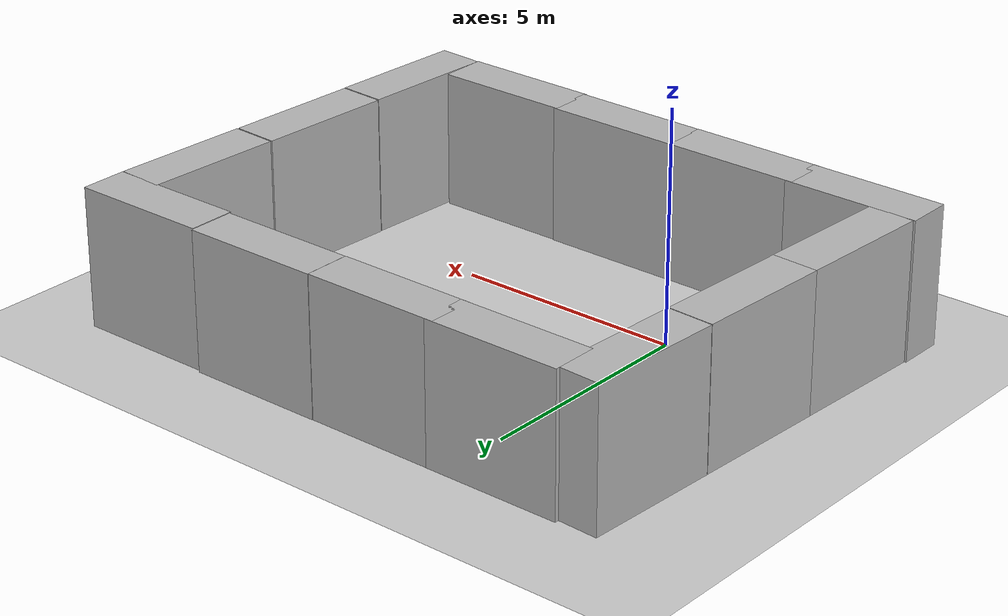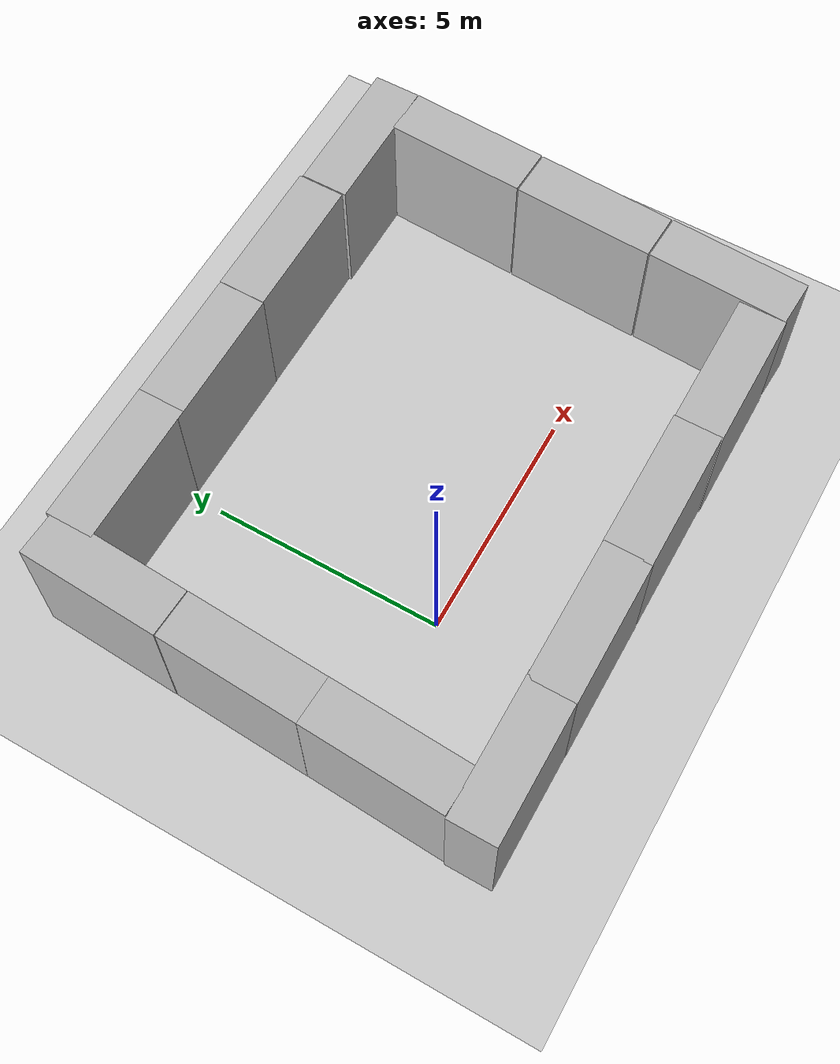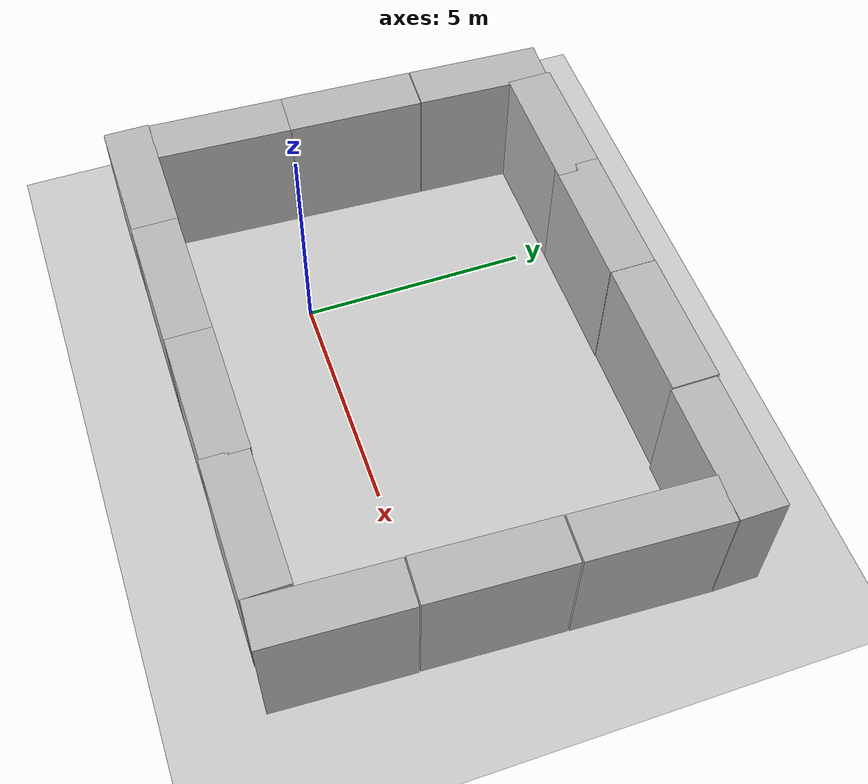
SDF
<sdf version="1.7">
 <world name="default">
  <light name="sun" type="directional">
   <pose>0 0 10 0 -0 0</pose>
   <diffuse>0.8 0.8 0.8 1</diffuse>
   <specular>0.2 0.2 0.2 1</specular>
   <attenuation>
    <range>1000</range>
    <constant>0.9</constant>
    <linear>0.01</linear>
    <quadratic>0.001</quadratic>
   </attenuation>
   <direction>-0.5 0.1 -0.9</direction>
   <spot><inner_angle>0</inner_angle><outer_angle>0</outer_angle><falloff>0</falloff></spot>
  </light>
  <model name="ground_plane">
   <static>1</static>
   <link name="link">
    <collision name="collision">
     <geometry><plane><normal>0 0 1</normal><size>100 100</size></plane></geometry>
     <surface>
      <contact><collide_bitmask>65535</collide_bitmask></contact>
      <friction><ode><mu>100</mu><mu2>50</mu2></ode></friction>
     </surface>
    </collision>
    <visual name="visual">
     <cast_shadows>0</cast_shadows>
     <geometry><plane><normal>0 0 1</normal><size>100 100</size></plane></geometry>
     <material>
      <script><uri>file://media/materials/scripts/gazebo.material</uri><name>Gazebo/Grey</name></script>
     </material>
    </visual>
   </link>
  </model>
  <gravity>0 0 -9.8</gravity>
  <magnetic_field>6e-06 2.3e-05 -4.2e-05</magnetic_field>
  <atmosphere type="adiabatic"/>
  <physics type="ode">
   <max_step_size>0.001</max_step_size>
   <real_time_factor>1</real_time_factor>
   <real_time_update_rate>1000</real_time_update_rate>
  </physics>
  <scene><ambient>0.4 0.4 0.4 1</ambient><background>0.7 0.7 0.7 1</background><shadows>1</shadows></scene>
  <spherical_coordinates>
   <surface_model>EARTH_WGS84</surface_model>
   <latitude_deg>0</latitude_deg>
   <longitude_deg>0</longitude_deg>
   <elevation>0</elevation>
   <heading_deg>0</heading_deg>
  </spherical_coordinates>
  <model name="brick_box_3x1x3">
   <static>1</static>
   <link name="chassis">
    <pose>0 0 1.5 0 -0 0</pose>
    <collision name="collision"><geometry><box><size>3 1 3</size></box></geometry></collision>
    <visual name="visual">
     <geometry><mesh><uri>model://brick_box_3x1x3/meshes/simple_box.dae</uri><scale>3 1 3</scale></mesh></geometry>
     <material>
      <script>
       <uri>model://brick_box_3x1x3/materials/scripts</uri>
       <uri>model://brick_box_3x1x3/materials/textures</uri>
       <name>BrickBox/Diffuse</name>
      </script>
     </material>
    </visual>
   </link>
   <pose>1.66588 6.15555 0 0 -0 0</pose>
  </model>
  <model name="brick_box_3x1x3_0">
   <static>1</static>
   <link name="chassis">
    <pose>0 0 1.5 0 -0 0</pose>
    <collision name="collision"><geometry><box><size>3 1 3</size></box></geometry></collision>
    <visual name="visual">
     <geometry><mesh><uri>model://brick_box_3x1x3/meshes/simple_box.dae</uri><scale>3 1 3</scale></mesh></geometry>
     <material>
      <script>
       <uri>model://brick_box_3x1x3/materials/scripts</uri>
       <uri>model://brick_box_3x1x3/materials/textures</uri>
       <name>BrickBox/Diffuse</name>
      </script>
     </material>
    </visual>
   </link>
   <pose>4.66943 6.16458 0 0 -0 0</pose>
  </model>
  <model name="brick_box_3x1x3_1">
   <static>1</static>
   <link name="chassis">
    <pose>0 0 1.5 0 -0 0</pose>
    <collision name="collision"><geometry><box><size>3 1 3</size></box></geometry></collision>
    <visual name="visual">
     <geometry><mesh><uri>model://brick_box_3x1x3/meshes/simple_box.dae</uri><scale>3 1 3</scale></mesh></geometry>
     <material>
      <script>
       <uri>model://brick_box_3x1x3/materials/scripts</uri>
       <uri>model://brick_box_3x1x3/materials/textures</uri>
       <name>BrickBox/Diffuse</name>
      </script>
     </material>
    </visual>
   </link>
   <pose>7.69198 6.11273 0 0 -0 0</pose>
  </model>
  <model name="brick_box_3x1x3_2">
   <static>1</static>
   <link name="chassis">
    <pose>0 0 1.5 0 -0 0</pose>
    <collision name="collision"><geometry><box><size>3 1 3</size></box></geometry></collision>
    <visual name="visual">
     <geometry><mesh><uri>model://brick_box_3x1x3/meshes/simple_box.dae</uri><scale>3 1 3</scale></mesh></geometry>
     <material>
      <script>
       <uri>model://brick_box_3x1x3/materials/scripts</uri>
       <uri>model://brick_box_3x1x3/materials/textures</uri>
       <name>BrickBox/Diffuse</name>
      </script>
     </material>
    </visual>
   </link>
   <pose>8.61767 4.12219 0 -0.001086 -5.3e-05 -1.61927</pose>
  </model>
  <model name="brick_box_3x1x3_2_clone">
   <static>1</static>
   <link name="chassis">
    <pose>0 0 1.5 0 -0 0</pose>
    <collision name="collision"><geometry><box><size>3 1 3</size></box></geometry></collision>
    <visual name="visual">
     <geometry><mesh><uri>model://brick_box_3x1x3/meshes/simple_box.dae</uri><scale>3 1 3</scale></mesh></geometry>
     <material>
      <script>
       <uri>model://brick_box_3x1x3/materials/scripts</uri>
       <uri>model://brick_box_3x1x3/materials/textures</uri>
       <name>BrickBox/Diffuse</name>
      </script>
     </material>
    </visual>
   </link>
   <pose>8.46454 1.09531 0 -0.001086 -5.3e-05 -1.61927</pose>
  </model>
  <model name="brick_box_3x1x3_2_clone_0">
   <static>1</static>
   <link name="chassis">
    <pose>0 0 1.5 0 -0 0</pose>
    <collision name="collision"><geometry><box><size>3 1 3</size></box></geometry></collision>
    <visual name="visual">
     <geometry><mesh><uri>model://brick_box_3x1x3/meshes/simple_box.dae</uri><scale>3 1 3</scale></mesh></geometry>
     <material>
      <script>
       <uri>model://brick_box_3x1x3/materials/scripts</uri>
       <uri>model://brick_box_3x1x3/materials/textures</uri>
       <name>BrickBox/Diffuse</name>
      </script>
     </material>
    </visual>
   </link>
   <pose>8.33167 -1.93171 0 -0.001086 -5.3e-05 -1.61927</pose>
  </model>
  <model name="brick_box_3x1x3_1_clone">
   <static>1</static>
   <link name="chassis">
    <pose>0 0 1.5 0 -0 0</pose>
    <collision name="collision"><geometry><box><size>3 1 3</size></box></geometry></collision>
    <visual name="visual">
     <geometry><mesh><uri>model://brick_box_3x1x3/meshes/simple_box.dae</uri><scale>3 1 3</scale></mesh></geometry>
     <material>
      <script>
       <uri>model://brick_box_3x1x3/materials/scripts</uri>
       <uri>model://brick_box_3x1x3/materials/textures</uri>
       <name>BrickBox/Diffuse</name>
      </script>
     </material>
    </visual>
   </link>
   <pose>6.26174 -2.9262 0 0 -0 0</pose>
  </model>
  <model name="brick_box_3x1x3_1_clone_0">
   <static>1</static>
   <link name="chassis">
    <pose>0 0 1.5 0 -0 0</pose>
    <collision name="collision"><geometry><box><size>3 1 3</size></box></geometry></collision>
    <visual name="visual">
     <geometry><mesh><uri>model://brick_box_3x1x3/meshes/simple_box.dae</uri><scale>3 1 3</scale></mesh></geometry>
     <material>
      <script>
       <uri>model://brick_box_3x1x3/materials/scripts</uri>
       <uri>model://brick_box_3x1x3/materials/textures</uri>
       <name>BrickBox/Diffuse</name>
      </script>
     </material>
    </visual>
   </link>
   <pose>3.3277 -2.90444 0 0 -0 0</pose>
  </model>
  <model name="brick_box_3x1x3_1_clone_1">
   <static>1</static>
   <link name="chassis">
    <pose>0 0 1.5 0 -0 0</pose>
    <collision name="collision"><geometry><box><size>3 1 3</size></box></geometry></collision>
    <visual name="visual">
     <geometry><mesh><uri>model://brick_box_3x1x3/meshes/simple_box.dae</uri><scale>3 1 3</scale></mesh></geometry>
     <material>
      <script>
       <uri>model://brick_box_3x1x3/materials/scripts</uri>
       <uri>model://brick_box_3x1x3/materials/textures</uri>
       <name>BrickBox/Diffuse</name>
      </script>
     </material>
    </visual>
   </link>
   <pose>0.358266 -2.90997 0 0 -0 0</pose>
  </model>
  <model name="brick_box_3x1x3_1_clone_2">
   <static>1</static>
   <link name="chassis">
    <pose>0 0 1.5 0 -0 0</pose>
    <collision name="collision"><geometry><box><size>3 1 3</size></box></geometry></collision>
    <visual name="visual">
     <geometry><mesh><uri>model://brick_box_3x1x3/meshes/simple_box.dae</uri><scale>3 1 3</scale></mesh></geometry>
     <material>
      <script>
       <uri>model://brick_box_3x1x3/materials/scripts</uri>
       <uri>model://brick_box_3x1x3/materials/textures</uri>
       <name>BrickBox/Diffuse</name>
      </script>
     </material>
    </visual>
   </link>
   <pose>-2.48563 -2.90229 0 0 -0 0</pose>
  </model>
  <model name="brick_box_3x1x3_1_clone_3">
   <static>1</static>
   <link name="chassis">
    <pose>0 0 1.5 0 -0 0</pose>
    <collision name="collision"><geometry><box><size>3 1 3</size></box></geometry></collision>
    <visual name="visual">
     <geometry><mesh><uri>model://brick_box_3x1x3/meshes/simple_box.dae</uri><scale>3 1 3</scale></mesh></geometry>
     <material>
      <script>
       <uri>model://brick_box_3x1x3/materials/scripts</uri>
       <uri>model://brick_box_3x1x3/materials/textures</uri>
       <name>BrickBox/Diffuse</name>
      </script>
     </material>
    </visual>
   </link>
   <pose>-1.14383 6.15963 0 0 -0 0</pose>
  </model>
  <model name="brick_box_3x1x3_2_clone_1">
   <static>1</static>
   <link name="chassis">
    <pose>0 0 1.5 0 -0 0</pose>
    <collision name="collision"><geometry><box><size>3 1 3</size></box></geometry></collision>
    <visual name="visual">
     <geometry><mesh><uri>model://brick_box_3x1x3/meshes/simple_box.dae</uri><scale>3 1 3</scale></mesh></geometry>
     <material>
      <script>
       <uri>model://brick_box_3x1x3/materials/scripts</uri>
       <uri>model://brick_box_3x1x3/materials/textures</uri>
       <name>BrickBox/Diffuse</name>
      </script>
     </material>
    </visual>
   </link>
   <pose>-3.37823 -0.913974 0 -0.001086 -5.3e-05 -1.61927</pose>
  </model>
  <model name="brick_box_3x1x3_2_clone_2">
   <static>1</static>
   <link name="chassis">
    <pose>0 0 1.5 0 -0 0</pose>
    <collision name="collision"><geometry><box><size>3 1 3</size></box></geometry></collision>
    <visual name="visual">
     <geometry><mesh><uri>model://brick_box_3x1x3/meshes/simple_box.dae</uri><scale>3 1 3</scale></mesh></geometry>
     <material>
      <script>
       <uri>model://brick_box_3x1x3/materials/scripts</uri>
       <uri>model://brick_box_3x1x3/materials/textures</uri>
       <name>BrickBox/Diffuse</name>
      </script>
     </material>
    </visual>
   </link>
   <pose>-3.23673 2.0769 0 -0.001086 -5.3e-05 -1.61927</pose>
  </model>
  <model name="brick_box_3x1x3_2_clone_3">
   <static>1</static>
   <link name="chassis">
    <pose>0 0 1.5 0 -0 0</pose>
    <collision name="collision"><geometry><box><size>3 1 3</size></box></geometry></collision>
    <visual name="visual">
     <geometry><mesh><uri>model://brick_box_3x1x3/meshes/simple_box.dae</uri><scale>3 1 3</scale></mesh></geometry>
     <material>
      <script>
       <uri>model://brick_box_3x1x3/materials/scripts</uri>
       <uri>model://brick_box_3x1x3/materials/textures</uri>
       <name>BrickBox/Diffuse</name>
      </script>
     </material>
    </visual>
   </link>
   <pose>-3.09389 5.09022 0 -0.001086 -5.3e-05 -1.61927</pose>
  </model>
 </world>
</sdf>
